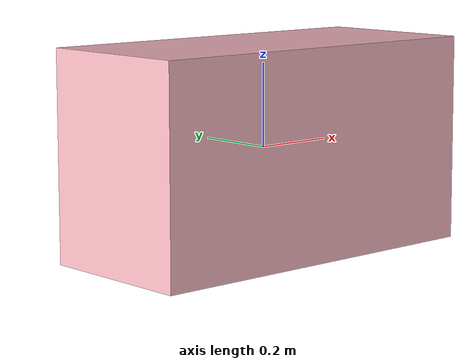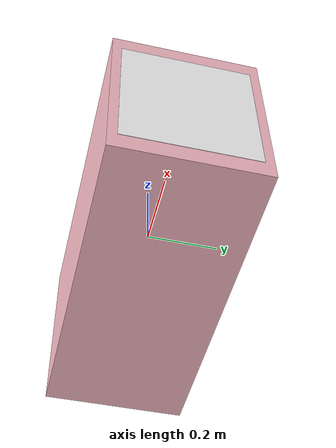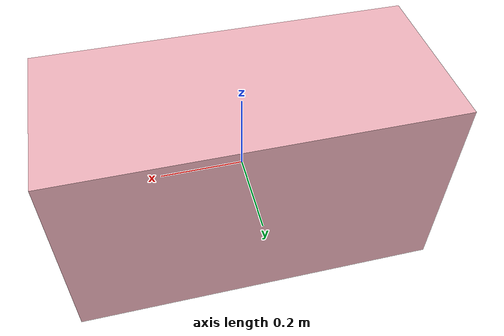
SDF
<?xml version="1.0" ?>
<sdf version="1.7">
  <model name="farm_pig">
    <static>false</static>
    <link name="link">
      <inertial>
        <mass>40.0</mass>
        <inertia>
          <ixx>1.36</ixx><ixy>0</ixy><ixz>0</ixz>
          <iyy>3.53</iyy><iyz>0</iyz>
          <izz>3.23</izz>
        </inertia>
      </inertial>

      <visual name="body_visual">
        <geometry>
          <box>
            <size>0.9 0.4 0.5</size>
          </box>
        </geometry>
        <material>
          <ambient>1.0 0.75 0.79 1.0</ambient>
          <diffuse>1.0 0.75 0.79 1.0</diffuse>
        </material>
      </visual>

      <collision name="body_collision">
        <geometry>
          <box>
            <size>0.9 0.4 0.5</size>
          </box>
        </geometry>
        <!-- 加入摩擦力，讓豬被撞到時不會像在冰上滑行 -->
        <surface>
          <friction>
            <ode>
              <mu>0.5</mu>
              <mu2>0.5</mu2>
            </ode>
          </friction>
        </surface>
      </collision>

      <visual name="face_marker_visual">
        <pose>0.451 0 0 0 0 0</pose>
        <geometry>
          <box>
            <size>0.001 0.35 0.40</size>
          </box>
        </geometry>
        <material>
          <ambient>1 1 1 1</ambient>
          <diffuse>1 1 1 1</diffuse>
          <pbr>
            <metal>
              <albedo_map>model://pig_model/media/textures/aruco_marker.png</albedo_map>
            </metal>
          </pbr>
        </material>
      </visual>
    </link>

    <!-- 加入速度控制外掛，允許從 ROS 2 接收 cmd_vel 指令 -->
    <plugin filename="gz-sim-velocity-control-system" name="gz::sim::systems::VelocityControl">
      <link_name>link</link_name>
    </plugin>
  </model>
</sdf>
